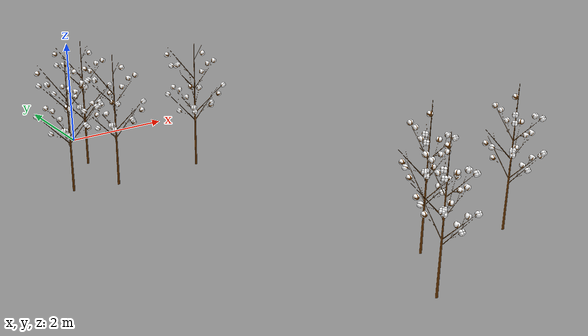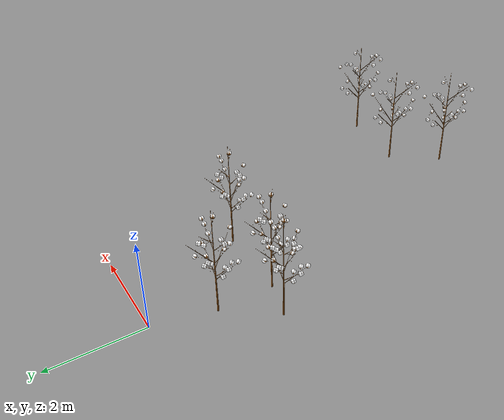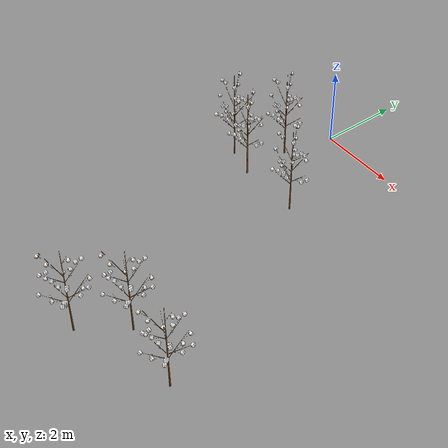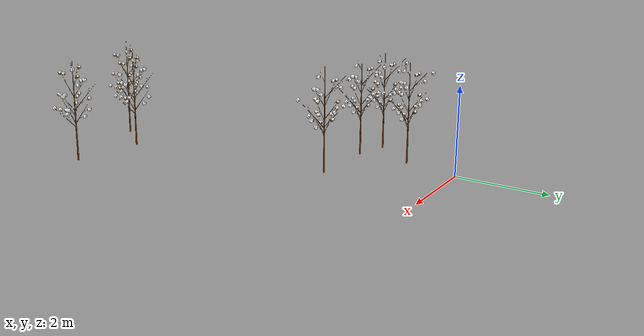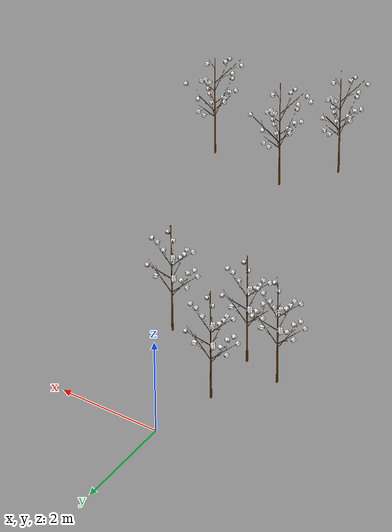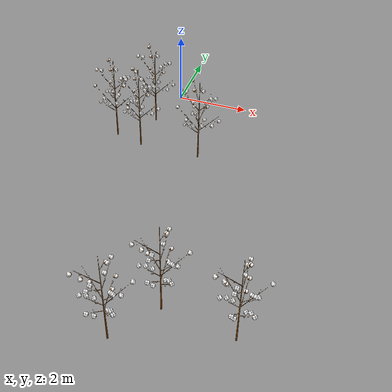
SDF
<sdf version="1.6">
 <world name="default">
  <model name="ground_plane">
   <scale>1 1 1</scale>
   <link name="link">
    <velocity>0 0 0 0 -0 0</velocity>
    <acceleration>0 0 0 0 -0 0</acceleration>
    <wrench>0 0 0 0 -0 0</wrench>
   </link>
  </model>
  <model name="cotton_clone_1_clone_clone_0">
   <link name="link">
    <collision name="collision">
     <geometry><mesh><scale>1 1 1</scale><uri>model://cotton/meshes/cotton.dae</uri></mesh></geometry>
    </collision>
    <inertial>
     <mass>1</mass>
     <inertia>
      <ixx>0.166667</ixx>
      <ixy>0</ixy>
      <ixz>0</ixz>
      <iyy>0.166667</iyy>
      <iyz>0</iyz>
      <izz>0.166667</izz>
     </inertia>
    </inertial>
    <visual name="visual">
     <geometry><mesh><scale>1 1 1</scale><uri>model://cotton/meshes/cotton.dae</uri></mesh></geometry>
    </visual>
    <velocity_decay><linear>0</linear><angular>0</angular></velocity_decay>
    <gravity>0</gravity>
   </link>
   <pose>2.408238 -5.05287 0 0 -0 1.5</pose>
   <static>1</static>
  </model>
  <model name="cotton_clone_1_clone_clone_3">
   <link name="link">
    <collision name="collision">
     <geometry><mesh><scale>1 1 1</scale><uri>model://cotton/meshes/cotton.dae</uri></mesh></geometry>
    </collision>
    <inertial>
     <mass>1</mass>
     <inertia>
      <ixx>0.166667</ixx>
      <ixy>0</ixy>
      <ixz>0</ixz>
      <iyy>0.166667</iyy>
      <iyz>0</iyz>
      <izz>0.166667</izz>
     </inertia>
    </inertial>
    <visual name="visual">
     <geometry><mesh><scale>1 1 1</scale><uri>model://cotton/meshes/cotton.dae</uri></mesh></geometry>
    </visual>
    <velocity_decay><linear>0</linear><angular>0</angular></velocity_decay>
    <gravity>0</gravity>
   </link>
   <pose>3.164838 -4.047196 0 0 -0 1.5</pose>
   <static>1</static>
  </model>
  <model name="cotton_clone_1_clone_clone_4">
   <link name="link">
    <collision name="collision">
     <geometry><mesh><scale>1 1 1</scale><uri>model://cotton/meshes/cotton.dae</uri></mesh></geometry>
    </collision>
    <inertial>
     <mass>1</mass>
     <inertia>
      <ixx>0.166667</ixx>
      <ixy>0</ixy>
      <ixz>0</ixz>
      <iyy>0.166667</iyy>
      <iyz>0</iyz>
      <izz>0.166667</izz>
     </inertia>
    </inertial>
    <visual name="visual">
     <geometry><mesh><scale>1 1 1</scale><uri>model://cotton/meshes/cotton.dae</uri></mesh></geometry>
    </visual>
    <velocity_decay><linear>0</linear><angular>0</angular></velocity_decay>
    <gravity>0</gravity>
   </link>
   <pose>3.182399 -3.254582 0 0 -0 0</pose>
   <static>1</static>
  </model>
  <model name="cotton_clone_5">
   <link name="link">
    <collision name="collision">
     <geometry><mesh><scale>1 1 1</scale><uri>model://cotton/meshes/cotton.dae</uri></mesh></geometry>
    </collision>
    <inertial>
     <mass>1</mass>
     <inertia>
      <ixx>0.166667</ixx>
      <ixy>0</ixy>
      <ixz>0</ixz>
      <iyy>0.166667</iyy>
      <iyz>0</iyz>
      <izz>0.166667</izz>
     </inertia>
    </inertial>
    <visual name="visual">
     <geometry><mesh><scale>1 1 1</scale><uri>model://cotton/meshes/cotton.dae</uri></mesh></geometry>
    </visual>
    <velocity_decay><linear>0</linear><angular>0</angular></velocity_decay>
    <gravity>0</gravity>
   </link>
   <pose>4.816557 -3.254582 0 0 -0 0</pose>
   <static>1</static>
  </model>
  <model name="cotton_clone_6">
   <link name="link">
    <collision name="collision">
     <geometry><mesh><scale>1 1 1</scale><uri>model://cotton/meshes/cotton.dae</uri></mesh></geometry>
    </collision>
    <inertial>
     <mass>1</mass>
     <inertia>
      <ixx>0.166667</ixx>
      <ixy>0</ixy>
      <ixz>0</ixz>
      <iyy>0.166667</iyy>
      <iyz>0</iyz>
      <izz>0.166667</izz>
     </inertia>
    </inertial>
    <visual name="visual">
     <geometry><mesh><scale>1 1 1</scale><uri>model://cotton/meshes/cotton.dae</uri></mesh></geometry>
    </visual>
    <velocity_decay><linear>0</linear><angular>0</angular></velocity_decay>
    <gravity>0</gravity>
   </link>
   <pose>4.816557 -4.254582 0 0 -0 1.5</pose>
   <static>1</static>
  </model>
  <model name="cotton_clone_18">
   <link name="link">
    <collision name="collision">
     <geometry><mesh><scale>1 1 1</scale><uri>model://cotton/meshes/cotton.dae</uri></mesh></geometry>
    </collision>
    <inertial>
     <mass>1</mass>
     <inertia>
      <ixx>0.166667</ixx>
      <ixy>0</ixy>
      <ixz>0</ixz>
      <iyy>0.166667</iyy>
      <iyz>0</iyz>
      <izz>0.166667</izz>
     </inertia>
    </inertial>
    <visual name="visual">
     <geometry><mesh><scale>1 1 1</scale><uri>model://cotton/meshes/cotton.dae</uri></mesh></geometry>
    </visual>
    <velocity_decay><linear>0</linear><angular>0</angular></velocity_decay>
    <gravity>0</gravity>
   </link>
   <pose>2.408238 -3.05287 0 0 -0 0</pose>
   <static>1</static>
  </model>
  <model name="cotton_clone_20">
   <link name="link">
    <collision name="collision">
     <geometry><mesh><scale>1 1 1</scale><uri>model://cotton/meshes/cotton.dae</uri></mesh></geometry>
    </collision>
    <inertial>
     <mass>1</mass>
     <inertia>
      <ixx>0.166667</ixx>
      <ixy>0</ixy>
      <ixz>0</ixz>
      <iyy>0.166667</iyy>
      <iyz>0</iyz>
      <izz>0.166667</izz>
     </inertia>
    </inertial>
    <visual name="visual">
     <geometry><mesh><scale>1 1 1</scale><uri>model://cotton/meshes/cotton.dae</uri></mesh></geometry>
    </visual>
    <velocity_decay><linear>0</linear><angular>0</angular></velocity_decay>
    <gravity>0</gravity>
   </link>
   <pose>3.164838 -2.047196 0 0 -0 0</pose>
   <static>1</static>
  </model>
  <model name="cotton_clone_21">
   <link name="link">
    <collision name="collision">
     <geometry><mesh><scale>1 1 1</scale><uri>model://cotton/meshes/cotton.dae</uri></mesh></geometry>
    </collision>
    <inertial>
     <mass>1</mass>
     <inertia>
      <ixx>0.166667</ixx>
      <ixy>0</ixy>
      <ixz>0</ixz>
      <iyy>0.166667</iyy>
      <iyz>0</iyz>
      <izz>0.166667</izz>
     </inertia>
    </inertial>
    <visual name="visual">
     <geometry><mesh><scale>1 1 1</scale><uri>model://cotton/meshes/cotton.dae</uri></mesh></geometry>
    </visual>
    <velocity_decay><linear>0</linear><angular>0</angular></velocity_decay>
    <gravity>0</gravity>
   </link>
   <pose>3.182399 -3.254582 0 0 -0 0</pose>
   <static>1</static>
  </model>
  <model name="cotton_clone_22">
   <link name="link">
    <collision name="collision">
     <geometry><mesh><scale>1 1 1</scale><uri>model://cotton/meshes/cotton.dae</uri></mesh></geometry>
    </collision>
    <inertial>
     <mass>1</mass>
     <inertia>
      <ixx>0.166667</ixx>
      <ixy>0</ixy>
      <ixz>0</ixz>
      <iyy>0.166667</iyy>
      <iyz>0</iyz>
      <izz>0.166667</izz>
     </inertia>
    </inertial>
    <visual name="visual">
     <geometry><mesh><scale>1 1 1</scale><uri>model://cotton/meshes/cotton.dae</uri></mesh></geometry>
    </visual>
    <velocity_decay><linear>0</linear><angular>0</angular></velocity_decay>
    <gravity>0</gravity>
   </link>
   <pose>4.816557 -3.254582 0 0 -0 0</pose>
   <static>1</static>
  </model>
 </world>
</sdf>
